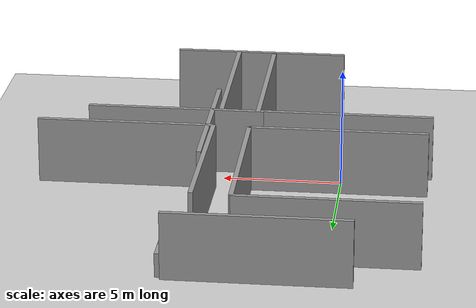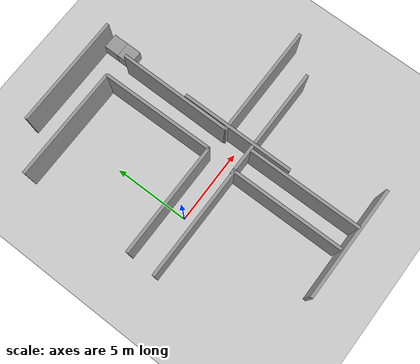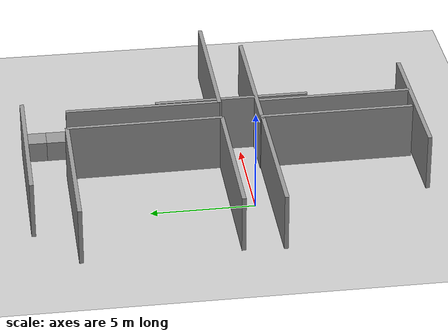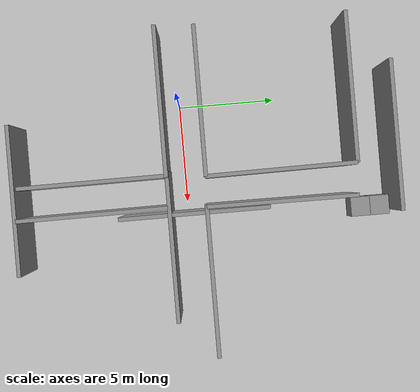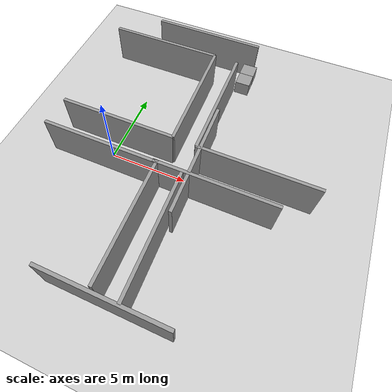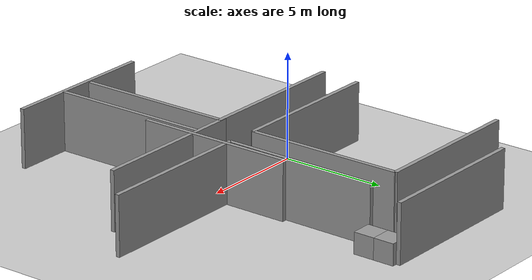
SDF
<sdf version="1.4">
 <world name="default">
  <model name="ground_plane">
   <static>1</static>
   <link name="link">
    <collision name="collision">
     <geometry><plane><normal>0 0 1</normal><size>100 100</size></plane></geometry>
     <surface><friction><ode><mu>100</mu><mu2>50</mu2></ode></friction></surface>
    </collision>
    <visual name="visual">
     <cast_shadows>0</cast_shadows>
     <geometry><plane><normal>0 0 1</normal><size>100 100</size></plane></geometry>
     <material>
      <script><uri>file://media/materials/scripts/gazebo.material</uri><name>Gazebo/Grey</name></script>
     </material>
    </visual>
    <velocity_decay><linear>0</linear><angular>0</angular></velocity_decay>
   </link>
  </model>
  <light name="sun" type="directional">
   <pose>0 0 10 0 -0 0</pose>
   <diffuse>0.8 0.8 0.8 1</diffuse>
   <specular>0.2 0.2 0.2 1</specular>
   <attenuation>
    <range>1000</range>
    <constant>0.9</constant>
    <linear>0.01</linear>
    <quadratic>0.001</quadratic>
   </attenuation>
   <direction>-0.5 0.1 -0.9</direction>
  </light>
  <physics type="ode">
   <max_step_size>0.001</max_step_size>
   <real_time_factor>1</real_time_factor>
   <real_time_update_rate>1000</real_time_update_rate>
   <gravity>0 0 -9.8</gravity>
  </physics>
  <scene><ambient>0.4 0.4 0.4 1</ambient><background>0.7 0.7 0.7 1</background><shadows>1</shadows></scene>
  <spherical_coordinates>
   <surface_model>EARTH_WGS84</surface_model>
   <latitude_deg>0</latitude_deg>
   <longitude_deg>0</longitude_deg>
   <elevation>0</elevation>
   <heading_deg>0</heading_deg>
  </spherical_coordinates>
  <model name="grey_wall">
   <static>1</static>
   <link name="link">
    <pose>0 0 1.4 0 -0 0</pose>
    <collision name="collision"><geometry><box><size>7.5 0.2 2.8</size></box></geometry></collision>
    <visual name="visual">
     <cast_shadows>0</cast_shadows>
     <geometry><box><size>7.5 0.2 2.8</size></box></geometry>
     <material>
      <script>
       <uri>model://grey_wall/materials/scripts</uri>
       <uri>model://grey_wall/materials/textures</uri>
       <name>vrc/grey_wall</name>
      </script>
     </material>
    </visual>
    <velocity_decay><linear>0</linear><angular>0</angular></velocity_decay>
   </link>
   <pose>0.064592 1.06916 0 0 -0 0</pose>
  </model>
  <model name="grey_wall_0">
   <static>1</static>
   <link name="link">
    <pose>0 0 1.4 0 -0 0</pose>
    <collision name="collision"><geometry><box><size>7.5 0.2 2.8</size></box></geometry></collision>
    <visual name="visual">
     <cast_shadows>0</cast_shadows>
     <geometry><box><size>7.5 0.2 2.8</size></box></geometry>
     <material>
      <script>
       <uri>model://grey_wall/materials/scripts</uri>
       <uri>model://grey_wall/materials/textures</uri>
       <name>vrc/grey_wall</name>
      </script>
     </material>
    </visual>
    <velocity_decay><linear>0</linear><angular>0</angular></velocity_decay>
   </link>
   <pose>-0.053154 -0.882571 0 0 -0 0</pose>
  </model>
  <model name="grey_wall_1">
   <static>1</static>
   <link name="link">
    <pose>0 0 1.4 0 -0 0</pose>
    <collision name="collision"><geometry><box><size>7.5 0.2 2.8</size></box></geometry></collision>
    <visual name="visual">
     <cast_shadows>0</cast_shadows>
     <geometry><box><size>7.5 0.2 2.8</size></box></geometry>
     <material>
      <script>
       <uri>model://grey_wall/materials/scripts</uri>
       <uri>model://grey_wall/materials/textures</uri>
       <name>vrc/grey_wall</name>
      </script>
     </material>
    </visual>
    <velocity_decay><linear>0</linear><angular>0</angular></velocity_decay>
   </link>
   <pose>3.64267 -4.52521 0 0 0 -1.5656</pose>
  </model>
  <model name="grey_wall_2">
   <static>1</static>
   <link name="link">
    <pose>0 0 1.4 0 -0 0</pose>
    <collision name="collision"><geometry><box><size>7.5 0.2 2.8</size></box></geometry></collision>
    <visual name="visual">
     <cast_shadows>0</cast_shadows>
     <geometry><box><size>7.5 0.2 2.8</size></box></geometry>
     <material>
      <script>
       <uri>model://grey_wall/materials/scripts</uri>
       <uri>model://grey_wall/materials/textures</uri>
       <name>vrc/grey_wall</name>
      </script>
     </material>
    </visual>
    <velocity_decay><linear>0</linear><angular>0</angular></velocity_decay>
   </link>
   <pose>5.22932 -4.67443 0 0 0 -1.56364</pose>
  </model>
  <model name="grey_wall_3">
   <static>1</static>
   <link name="link">
    <pose>0 0 1.4 0 -0 0</pose>
    <collision name="collision"><geometry><box><size>7.5 0.2 2.8</size></box></geometry></collision>
    <visual name="visual">
     <cast_shadows>0</cast_shadows>
     <geometry><box><size>7.5 0.2 2.8</size></box></geometry>
     <material>
      <script>
       <uri>model://grey_wall/materials/scripts</uri>
       <uri>model://grey_wall/materials/textures</uri>
       <name>vrc/grey_wall</name>
      </script>
     </material>
    </visual>
    <velocity_decay><linear>0</linear><angular>0</angular></velocity_decay>
   </link>
   <pose>5.32287 4.74722 0 0 0 -1.57403</pose>
  </model>
  <model name="grey_wall_4">
   <static>1</static>
   <link name="link">
    <pose>0 0 1.4 0 -0 0</pose>
    <collision name="collision"><geometry><box><size>7.5 0.2 2.8</size></box></geometry></collision>
    <visual name="visual">
     <cast_shadows>0</cast_shadows>
     <geometry><box><size>7.5 0.2 2.8</size></box></geometry>
     <material>
      <script>
       <uri>model://grey_wall/materials/scripts</uri>
       <uri>model://grey_wall/materials/textures</uri>
       <name>vrc/grey_wall</name>
      </script>
     </material>
    </visual>
    <velocity_decay><linear>0</linear><angular>0</angular></velocity_decay>
   </link>
   <pose>3.76614 4.81052 0 0 0 -1.5613</pose>
  </model>
  <model name="grey_wall_5">
   <static>1</static>
   <link name="link">
    <pose>0 0 1.4 0 -0 0</pose>
    <collision name="collision"><geometry><box><size>7.5 0.2 2.8</size></box></geometry></collision>
    <visual name="visual">
     <cast_shadows>0</cast_shadows>
     <geometry><box><size>7.5 0.2 2.8</size></box></geometry>
     <material>
      <script>
       <uri>model://grey_wall/materials/scripts</uri>
       <uri>model://grey_wall/materials/textures</uri>
       <name>vrc/grey_wall</name>
      </script>
     </material>
    </visual>
    <velocity_decay><linear>0</linear><angular>0</angular></velocity_decay>
   </link>
   <pose>7.13163 -0.848014 0 0 -0 0</pose>
  </model>
  <model name="grey_wall_6">
   <static>1</static>
   <link name="link">
    <pose>0 0 1.4 0 -0 0</pose>
    <collision name="collision"><geometry><box><size>7.5 0.2 2.8</size></box></geometry></collision>
    <visual name="visual">
     <cast_shadows>0</cast_shadows>
     <geometry><box><size>7.5 0.2 2.8</size></box></geometry>
     <material>
      <script>
       <uri>model://grey_wall/materials/scripts</uri>
       <uri>model://grey_wall/materials/textures</uri>
       <name>vrc/grey_wall</name>
      </script>
     </material>
    </visual>
    <velocity_decay><linear>0</linear><angular>0</angular></velocity_decay>
   </link>
   <pose>9 1 0 0 -0 0</pose>
  </model>
  <model name="grey_wall_7">
   <static>1</static>
   <link name="link">
    <pose>0 0 1.4 0 -0 0</pose>
    <collision name="collision"><geometry><box><size>7.5 0.2 2.8</size></box></geometry></collision>
    <visual name="visual">
     <cast_shadows>0</cast_shadows>
     <geometry><box><size>7.5 0.2 2.8</size></box></geometry>
     <material>
      <script>
       <uri>model://grey_wall/materials/scripts</uri>
       <uri>model://grey_wall/materials/textures</uri>
       <name>vrc/grey_wall</name>
      </script>
     </material>
    </visual>
    <velocity_decay><linear>0</linear><angular>0</angular></velocity_decay>
   </link>
   <pose>2.52521 10.5725 0 0 -0 0</pose>
  </model>
  <model name="grey_wall_8">
   <static>1</static>
   <link name="link">
    <pose>0 0 1.4 0 -0 0</pose>
    <collision name="collision"><geometry><box><size>7.5 0.2 2.8</size></box></geometry></collision>
    <visual name="visual">
     <cast_shadows>0</cast_shadows>
     <geometry><box><size>7.5 0.2 2.8</size></box></geometry>
     <material>
      <script>
       <uri>model://grey_wall/materials/scripts</uri>
       <uri>model://grey_wall/materials/textures</uri>
       <name>vrc/grey_wall</name>
      </script>
     </material>
    </visual>
    <velocity_decay><linear>0</linear><angular>0</angular></velocity_decay>
   </link>
   <pose>4.24431 -8.45729 0 0 -0 0</pose>
  </model>
  <model name="grey_wall_9">
   <static>1</static>
   <link name="link">
    <pose>0 0 1.4 0 -0 0</pose>
    <collision name="collision"><geometry><box><size>7.5 0.2 2.8</size></box></geometry></collision>
    <visual name="visual">
     <cast_shadows>0</cast_shadows>
     <geometry><box><size>7.5 0.2 2.8</size></box></geometry>
     <material>
      <script>
       <uri>model://grey_wall/materials/scripts</uri>
       <uri>model://grey_wall/materials/textures</uri>
       <name>vrc/grey_wall</name>
      </script>
     </material>
    </visual>
    <velocity_decay><linear>0</linear><angular>0</angular></velocity_decay>
   </link>
   <pose>5.56566 0.360593 0 0 0 -1.56798</pose>
  </model>
  <model name="unit_box_3">
   <pose>6 8.97245 0.5 0 -0 1.3e-05</pose>
   <link name="link">
    <inertial>
     <mass>1</mass>
     <inertia><ixx>1</ixx><ixy>0</ixy><ixz>0</ixz><iyy>1</iyy><iyz>0</iyz><izz>1</izz></inertia>
    </inertial>
    <collision name="collision"><geometry><box><size>1 1 1</size></box></geometry></collision>
    <visual name="visual">
     <geometry><box><size>1 1 1</size></box></geometry>
     <material>
      <script><uri>file://media/materials/scripts/gazebo.material</uri><name>Gazebo/Grey</name></script>
     </material>
    </visual>
    <velocity_decay><linear>0</linear><angular>0</angular></velocity_decay>
   </link>
   <static>0</static>
  </model>
  <model name="unit_box_4">
   <pose>6 9.97246 0.5 0 -0 5e-06</pose>
   <link name="link">
    <inertial>
     <mass>1</mass>
     <inertia><ixx>1</ixx><ixy>0</ixy><ixz>0</ixz><iyy>1</iyy><iyz>0</iyz><izz>1</izz></inertia>
    </inertial>
    <collision name="collision"><geometry><box><size>1 1 1</size></box></geometry></collision>
    <visual name="visual">
     <geometry><box><size>1 1 1</size></box></geometry>
     <material>
      <script><uri>file://media/materials/scripts/gazebo.material</uri><name>Gazebo/Grey</name></script>
     </material>
    </visual>
    <velocity_decay><linear>0</linear><angular>0</angular></velocity_decay>
   </link>
   <static>0</static>
  </model>
  <model name="grey_wall_10">
   <static>1</static>
   <link name="link">
    <pose>0 0 1.4 0 -0 0</pose>
    <collision name="collision"><geometry><box><size>7.5 0.2 2.8</size></box></geometry></collision>
    <visual name="visual">
     <cast_shadows>0</cast_shadows>
     <geometry><box><size>7.5 0.2 2.8</size></box></geometry>
     <material>
      <script>
       <uri>model://grey_wall/materials/scripts</uri>
       <uri>model://grey_wall/materials/textures</uri>
       <name>vrc/grey_wall</name>
      </script>
     </material>
    </visual>
    <velocity_decay><linear>0</linear><angular>0</angular></velocity_decay>
   </link>
   <pose>0 8.55457 0 0 -0 0</pose>
  </model>
 </world>
</sdf>
